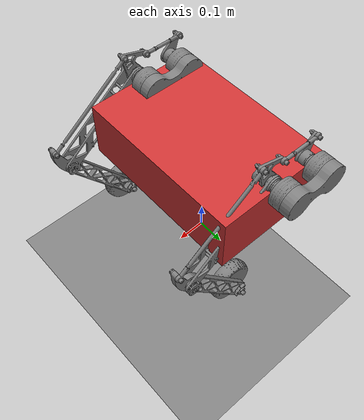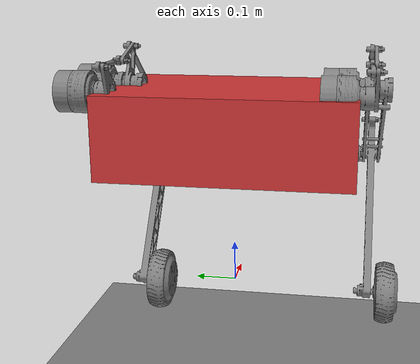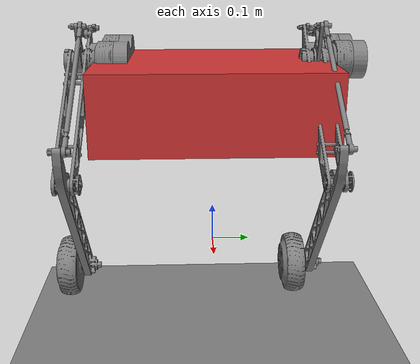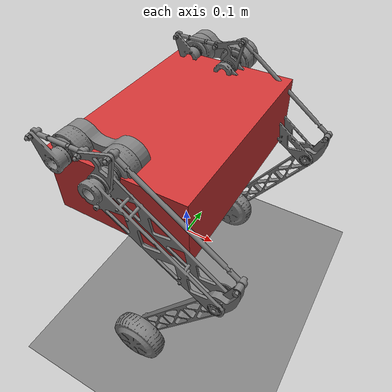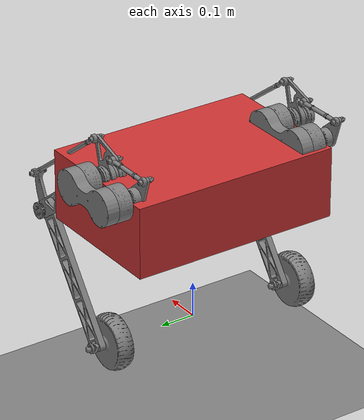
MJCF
<?xml version="1.0" encoding="utf-8"?>
<mujoco model="biped_wheeled_robot">
  <compiler angle="radian" meshdir="meshes/"/>
  <option gravity="0 0 -9.81" timestep="0.002"/>

  <asset>
    <mesh name="base_link" file="base_link.STL"/>
    <mesh name="hip_pitch_actuator" file="hip_pitch_actuator.STL"/>
    <mesh name="hip_pitch_link" file="hip_pitch_link.STL"/>
    <mesh name="knee_pitch_link" file="knee_pitch_link.STL"/>
    <mesh name="ankle_wheel_link" file="ankle_wheel_link.STL"/>
    <mesh name="knee_ternery_link" file="knee_ternery_link.STL"/>
    <mesh name="knee_b_rod_link" file="knee_b_rod_link.STL"/>
    <mesh name="knee_pitch_actuator" file="knee_pitch_actuator.STL"/>
    <mesh name="knee_crank_link" file="knee_crank_link.STL"/>
    <mesh name="knee_u_rod_link" file="knee_u_rod_link.STL"/>
  </asset>

  <worldbody>
    <geom name="floor" type="plane" pos="0 0 -0.25" size="10 10 0.1" rgba="0.5 0.5 0.5 1" friction="0.8 0.5 0.1"/>

    <body name="torso" pos="0 0 0.4">
      <freejoint name="root"/>
      <inertial pos="0 0 0" mass="5.0" diaginertia="0.1 0.1 0.1"/>
      <geom type="box" size="0.2 0.3 0.1" rgba="0.8 0.2 0.2 1" mass="5.0"/>

      <body name="r_base_link" pos="0 0.3 0.1" quat="0.707105 -0.707108 0 0">
        <inertial pos="-0.07 0 0.0709952" quat="0 0.707107 0 0.707107" mass="3.51005" diaginertia="0.0186503 0.0168976 0.00237397"/>
        <geom type="mesh" mesh="base_link"/>

        <body name="rhip_pitch_actuator" pos="0 0 -0.03945" quat="0.670822 0.670824 0.2236 0.223599">
          <inertial pos="-6.92884e-05 0.068232 7.41068e-06" quat="0.706478 0.0252882 0.025265 0.706831" mass="2.70656" diaginertia="0.00308089 0.00200266 0.00199536"/>
          <geom type="mesh" mesh="hip_pitch_actuator"/>
          <body name="rhip_pitch_link">
            <inertial pos="0.122288 0.00340485 -0.000591129" quat="0.498342 0.501653 0.501653 0.498342" mass="2.21436" diaginertia="0.020162 0.0197901 0.000745523"/>
            <joint name="rhip_pitch_joint" pos="0 0 0" axis="0 1 0" range="-0.6 0.9" armature="0.0149" frictionloss="0.3" damping="0.03"/>
            <geom type="mesh" mesh="hip_pitch_link"/>
            <body name="rknee_pitch_link" pos="0.375 0 0" quat="0.707105 0 0.707108 0">
              <inertial pos="0.148784 0.000713563 0.00217024" quat="0.501825 0.498959 0.496599 0.502595" mass="2.15352" diaginertia="0.0413684 0.0408434 0.000706617"/>
              <joint name="rknee_pitch_joint" pos="0 0 0" axis="0 1 0" range="-1.1 1.5"/>
              <geom type="mesh" mesh="knee_pitch_link"/>
              <body name="rankle_wheel_link" pos="0.39297 0 0.004716" quat="0.447225 -1.64265e-06 -0.894422 1.64265e-06">
                <inertial pos="-3.19801e-06 -0.0458553 -6.54249e-06" quat="0.377742 0.597818 0.597612 0.377869" mass="7.47242" diaginertia="0.0210808 0.0123658 0.0123656"/>
                <joint name="rankle_wheel_joint" pos="0 0 0" axis="0 1 0" frictionloss="1" damping="0.1"/>
                <geom type="mesh" mesh="ankle_wheel_link"/>
              </body>
            </body>
            <body name="rknee_ternery_link">
              <inertial pos="-0.0153169 0.00369448 0.0292857" quat="0.688575 -0.179464 -0.160542 0.68402" mass="0.300664" diaginertia="0.000428677 0.000274198 0.000158953"/>
              <joint name="rknee_ternery_joint" pos="0 0 0" axis="0 1 0" range="-3 1.16"/>
              <geom type="mesh" mesh="knee_ternery_link"/>
              <body name="rknee_b_rod_link" pos="-0.018545 0.015 0.098265">
                <inertial pos="0.188395 -0.00152232 0" quat="0 0.707107 0 0.707107" mass="0.410882" diaginertia="0.00197372 0.00196739 1.66426e-05"/>
                <joint name="rknee_b_rod_joint" pos="0 0 0" axis="0 1 0"/>
                <geom type="mesh" mesh="knee_b_rod_link"/>
              </body>
            </body>
          </body>
        </body>
        <body name="rknee_pitch_actuator" pos="-0.14 0 -0.03445" quat="0.332967 0.332968 -0.623806 -0.623804">
          <inertial pos="5.09633e-05 0.063232 4.75241e-05" quat="0.270579 0.653429 0.653098 0.270705" mass="2.70656" diaginertia="0.00308089 0.00200266 0.00199536"/>
          <geom type="mesh" mesh="knee_pitch_actuator"/>
          <body name="rknee_crank_link">
            <inertial pos="0.00821808 0.0140749 -7.49109e-05" quat="0.501458 0.501458 0.498537 0.498537" mass="0.578923" diaginertia="0.000360458 0.000268787 0.000136005"/>
            <joint name="rknee_crank_joint" pos="0 0 0" axis="0 1 0" armature="0.0149" frictionloss="0.3" damping="0.03"/>
            <geom type="mesh" mesh="knee_crank_link"/>
            <body name="rknee_u_rod_link" pos="0.075 0.01 0" quat="0.470869 -1.51092e-06 0.882203 -1.51092e-06">
              <inertial pos="0.07 -0.00152232 0" quat="0 0.707107 0 0.707107" mass="0.210882" diaginertia="0.00009372 0.00008739 1.66426e-05"/>
              <joint name="rknee_u_rod_joint" pos="0 0 0" axis="0 1 0"/>
              <geom type="mesh" mesh="knee_u_rod_link"/>
            </body>
          </body>
        </body>
      </body>

      <body name="l_base_link" pos="0 -0.3 0.1" quat="0.707105 -0.707108 0 0">
        <inertial pos="-0.07 0 0.0709952" quat="0 0.707107 0 0.707107" mass="3.51005" diaginertia="0.0186503 0.0168976 0.00237397"/>
        <geom type="mesh" mesh="base_link"/>

        <body name="lhip_pitch_actuator" pos="0 0 -0.03945" quat="0.670822 0.670824 0.2236 0.223599">
          <inertial pos="-6.92884e-05 0.068232 7.41068e-06" quat="0.706478 0.0252882 0.025265 0.706831" mass="2.70656" diaginertia="0.00308089 0.00200266 0.00199536"/>
          <geom type="mesh" mesh="hip_pitch_actuator"/>
          <body name="lhip_pitch_link">
            <inertial pos="0.122288 0.00340485 -0.000591129" quat="0.498342 0.501653 0.501653 0.498342" mass="2.21436" diaginertia="0.020162 0.0197901 0.000745523"/>
            <joint name="lhip_pitch_joint" pos="0 0 0" axis="0 1 0" range="-0.6 0.9" armature="0.0149" frictionloss="0.3" damping="0.03"/>
            <geom type="mesh" mesh="hip_pitch_link"/>
            <body name="lknee_pitch_link" pos="0.375 0 0" quat="0.707105 0 0.707108 0">
              <inertial pos="0.148784 0.000713563 0.00217024" quat="0.501825 0.498959 0.496599 0.502595" mass="2.15352" diaginertia="0.0413684 0.0408434 0.000706617"/>
              <joint name="lknee_pitch_joint" pos="0 0 0" axis="0 1 0" range="-1.1 1.5"/>
              <geom type="mesh" mesh="knee_pitch_link"/>
              <body name="lankle_wheel_link" pos="0.39297 0 0.004716" quat="0.447225 -1.64265e-06 -0.894422 1.64265e-06">
                <inertial pos="-3.19801e-06 -0.0458553 -6.54249e-06" quat="0.377742 0.597818 0.597612 0.377869" mass="7.47242" diaginertia="0.0210808 0.0123658 0.0123656"/>
                <joint name="lankle_wheel_joint" pos="0 0 0" axis="0 1 0" frictionloss="1" damping="0.1"/>
                <geom type="mesh" mesh="ankle_wheel_link"/>
              </body>
            </body>
            <body name="lknee_ternery_link">
              <inertial pos="-0.0153169 0.00369448 0.0292857" quat="0.688575 -0.179464 -0.160542 0.68402" mass="0.300664" diaginertia="0.000428677 0.000274198 0.000158953"/>
              <joint name="lknee_ternery_joint" pos="0 0 0" axis="0 1 0" range="-3 1.16"/>
              <geom type="mesh" mesh="knee_ternery_link"/>
              <body name="lknee_b_rod_link" pos="-0.018545 0.015 0.098265">
                <inertial pos="0.188395 -0.00152232 0" quat="0 0.707107 0 0.707107" mass="0.410882" diaginertia="0.00197372 0.00196739 1.66426e-05"/>
                <joint name="lknee_b_rod_joint" pos="0 0 0" axis="0 1 0"/>
                <geom type="mesh" mesh="knee_b_rod_link"/>
              </body>
            </body>
          </body>
        </body>
        <body name="lknee_pitch_actuator" pos="-0.14 0 -0.03445" quat="0.332967 0.332968 -0.623806 -0.623804">
          <inertial pos="5.09633e-05 0.063232 4.75241e-05" quat="0.270579 0.653429 0.653098 0.270705" mass="2.70656" diaginertia="0.00308089 0.00200266 0.00199536"/>
          <geom type="mesh" mesh="knee_pitch_actuator"/>
          <body name="lknee_crank_link">
            <inertial pos="0.00821808 0.0140749 -7.49109e-05" quat="0.501458 0.501458 0.498537 0.498537" mass="0.578923" diaginertia="0.000360458 0.000268787 0.000136005"/>
            <joint name="lknee_crank_joint" pos="0 0 0" axis="0 1 0" armature="0.0149" frictionloss="0.3" damping="0.03"/>
            <geom type="mesh" mesh="knee_crank_link"/>
            <body name="lknee_u_rod_link" pos="0.075 0.01 0" quat="0.470869 -1.51092e-06 0.882203 -1.51092e-06">
              <inertial pos="0.07 -0.00152232 0" quat="0 0.707107 0 0.707107" mass="0.210882" diaginertia="0.00009372 0.00008739 1.66426e-05"/>
              <joint name="lknee_u_rod_joint" pos="0 0 0" axis="0 1 0"/>
              <geom type="mesh" mesh="knee_u_rod_link"/>
            </body>
          </body>
        </body>
      </body>

    </body>
  </worldbody>

  <equality>
    <connect name="rknee_u_rod_constraint" body1="rknee_u_rod_link" body2="rknee_ternery_link" anchor="0.14 0 0" solref="0.02 1" solimp="0.9 0.95 0.001"/>
    <connect name="rknee_b_rod_constraint" body1="rknee_b_rod_link" body2="rknee_pitch_link" anchor="0.375 0 0" solref="0.02 1" solimp="0.9 0.95 0.001"/>
    <connect name="lknee_u_rod_constraint" body1="lknee_u_rod_link" body2="lknee_ternery_link" anchor="0.14 0 0" solref="0.02 1" solimp="0.9 0.95 0.001"/>
    <connect name="lknee_b_rod_constraint" body1="lknee_b_rod_link" body2="lknee_pitch_link" anchor="0.375 0 0" solref="0.02 1" solimp="0.9 0.95 0.001"/>
  </equality>

  <actuator>
    <position name="rhip_act" joint="rhip_pitch_joint" kp="100" kv="50" ctrlrange="-1 1"/>
    <position name="rknee_act" joint="rknee_crank_joint" kp="100" kv="50" ctrlrange="-0.5 2.1"/>
    <position name="lhip_act" joint="lhip_pitch_joint" kp="100" kv="50" ctrlrange="-1 1"/>
    <position name="lknee_act" joint="lknee_crank_joint" kp="100" kv="50" ctrlrange="-0.5 2.1"/>
  </actuator>

  <sensor>
    <jointpos name="rhip_pos" joint="rhip_pitch_joint"/>
    <jointpos name="rknee_pos" joint="rknee_crank_joint"/>
    <jointpos name="lhip_pos" joint="lhip_pitch_joint"/>
    <jointpos name="lknee_pos" joint="lknee_crank_joint"/>

    <jointvel name="rhip_vel" joint="rhip_pitch_joint"/>
    <jointvel name="rknee_vel" joint="rknee_crank_joint"/>
    <jointvel name="lhip_vel" joint="lhip_pitch_joint"/>
    <jointvel name="lknee_vel" joint="lknee_crank_joint"/>

    <framepos name="torso_pos" objtype="body" objname="torso"/>
    <framequat name="torso_quat" objtype="body" objname="torso"/>
    <framelinvel name="torso_linvel" objtype="body" objname="torso"/>
    <frameangvel name="torso_angvel" objtype="body" objname="torso"/>

  </sensor>

</mujoco>
